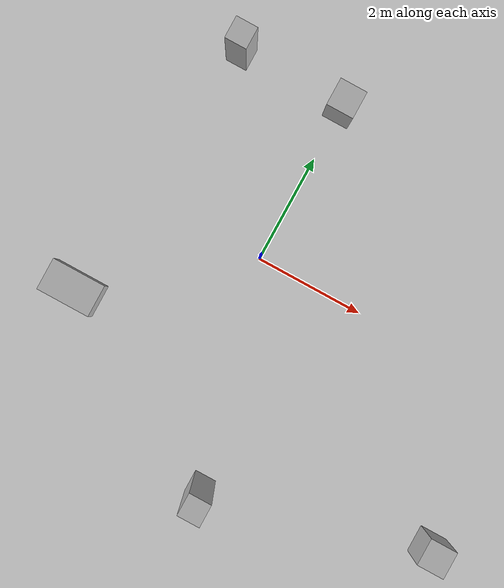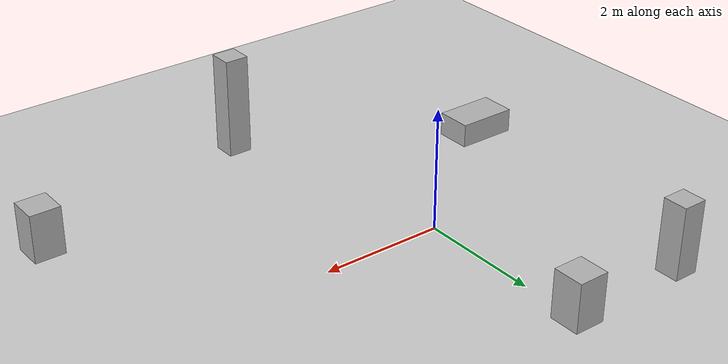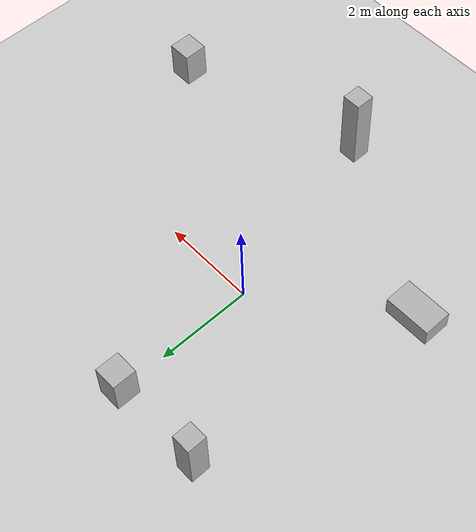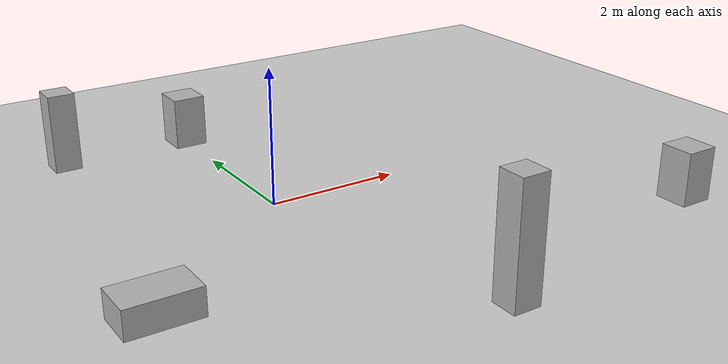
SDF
<sdf version="1.8">
 <world name="default">
  <scene><shadows>0</shadows></scene>
  <physics type="ode">
   <real_time_update_rate>250.0</real_time_update_rate>
   <max_step_size>0.004</max_step_size>
   <real_time_factor>1</real_time_factor>
   <ode>
    <solver>
     <type>quick</type>
     <iters>150</iters>
     <precon_iters>0</precon_iters>
     <sor>1.400000</sor>
     <use_dynamic_moi_rescaling>1</use_dynamic_moi_rescaling>
    </solver>
    <constraints>
     <cfm>0.00001</cfm>
     <erp>0.2</erp>
     <contact_max_correcting_vel>2000.000000</contact_max_correcting_vel>
     <contact_surface_layer>0.01000</contact_surface_layer>
    </constraints>
   </ode>
  </physics>
  <plugin filename="gz-sim-physics-system" name="gz::sim::systems::Physics"/>
  <plugin filename="gz-sim-user-commands-system" name="gz::sim::systems::UserCommands"/>
  <plugin filename="gz-sim-scene-broadcaster-system" name="gz::sim::systems::SceneBroadcaster"/>
  <plugin filename="gz-sim-sensors-system" name="gz::sim::systems::Sensors">
   <render_engine>ogre2</render_engine>
  </plugin>
  <plugin filename="gz-sim-imu-system" name="gz::sim::systems::Imu"/>
  <include><uri>https://fuel.gazebosim.org/1.0/OpenRobotics/models/Ground Plane</uri></include>
  <include><uri>https://fuel.gazebosim.org/1.0/OpenRobotics/models/Sun</uri></include>
  <include>
   <uri>https://fuel.gazebosim.org/1.0/OpenRobotics/models/MaleVisitorOnPhone</uri>
   <name>person_standing</name>
   <pose>1.0 -4.0 0 0 0 1.5708</pose>
  </include>
  <include>
   <uri>https://fuel.gazebosim.org/1.0/OpenRobotics/models/FemaleVisitorSit</uri>
   <name>person_sitting</name>
   <pose>-2.0 3.0 0 0 0 0</pose>
  </include>
  <include>
   <uri>https://fuel.gazebosim.org/1.0/OpenRobotics/models/Chair</uri>
   <name>chair_1</name>
   <pose>0.0 3.0 0 0 0 0</pose>
  </include>
  <include>
   <uri>https://fuel.gazebosim.org/1.0/OpenRobotics/models/foldable_chair</uri>
   <name>chair_2</name>
   <pose>5.0 -3.0 0 0 0 1.57</pose>
  </include>
  <include>
   <uri>https://fuel.gazebosim.org/1.0/OpenRobotics/models/CoffeeTable</uri>
   <name>coffee_table</name>
   <pose>-2.6 -2.0 0 0 0 0</pose>
  </include>
 </world>
</sdf>

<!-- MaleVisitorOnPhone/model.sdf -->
<sdf version="1.7">
  <model name="MaleVisitorOnPhone">
    <static>true</static>
    <link name="link">
      <pose>0 0 0.85 0 0 0</pose>
      <visual name="visual">
        <geometry>
          <box>
            <size>0.4 0.4 1.7</size>
          </box>
        </geometry>
        <material>
          <ambient>0.7 0.7 0.7 1</ambient>
          <diffuse>0.7 0.7 0.7 1</diffuse>
        </material>
      </visual>
      <collision name="collision">
        <geometry>
          <box>
            <size>0.4 0.4 1.7</size>
          </box>
        </geometry>
      </collision>
    </link>
  </model>
</sdf>

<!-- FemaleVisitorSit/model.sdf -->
<sdf version="1.7">
  <model name="FemaleVisitorSit">
    <static>true</static>
    <link name="link">
      <pose>0 0 0.6 0 0 0</pose>
      <visual name="visual">
        <geometry>
          <box>
            <size>0.4 0.4 1.2</size>
          </box>
        </geometry>
        <material>
          <ambient>0.7 0.7 0.7 1</ambient>
          <diffuse>0.7 0.7 0.7 1</diffuse>
        </material>
      </visual>
      <collision name="collision">
        <geometry>
          <box>
            <size>0.4 0.4 1.2</size>
          </box>
        </geometry>
      </collision>
    </link>
  </model>
</sdf>

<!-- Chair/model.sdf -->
<sdf version="1.7">
  <model name="Chair">
    <static>true</static>
    <link name="link">
      <pose>0 0 0.4 0 0 0</pose>
      <visual name="visual">
        <geometry>
          <box>
            <size>0.5 0.5 0.8</size>
          </box>
        </geometry>
        <material>
          <ambient>0.7 0.7 0.7 1</ambient>
          <diffuse>0.7 0.7 0.7 1</diffuse>
        </material>
      </visual>
      <collision name="collision">
        <geometry>
          <box>
            <size>0.5 0.5 0.8</size>
          </box>
        </geometry>
      </collision>
    </link>
  </model>
</sdf>

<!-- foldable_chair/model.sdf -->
<sdf version="1.7">
  <model name="foldable_chair">
    <static>true</static>
    <link name="link">
      <pose>0 0 0.4 0 0 0</pose>
      <visual name="visual">
        <geometry>
          <box>
            <size>0.5 0.5 0.8</size>
          </box>
        </geometry>
        <material>
          <ambient>0.7 0.7 0.7 1</ambient>
          <diffuse>0.7 0.7 0.7 1</diffuse>
        </material>
      </visual>
      <collision name="collision">
        <geometry>
          <box>
            <size>0.5 0.5 0.8</size>
          </box>
        </geometry>
      </collision>
    </link>
  </model>
</sdf>

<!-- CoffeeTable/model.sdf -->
<sdf version="1.7">
  <model name="CoffeeTable">
    <static>true</static>
    <link name="link">
      <pose>0 0 0.2 0 0 0</pose>
      <visual name="visual">
        <geometry>
          <box>
            <size>1.0 0.6 0.4</size>
          </box>
        </geometry>
        <material>
          <ambient>0.7 0.7 0.7 1</ambient>
          <diffuse>0.7 0.7 0.7 1</diffuse>
        </material>
      </visual>
      <collision name="collision">
        <geometry>
          <box>
            <size>1.0 0.6 0.4</size>
          </box>
        </geometry>
      </collision>
    </link>
  </model>
</sdf>
